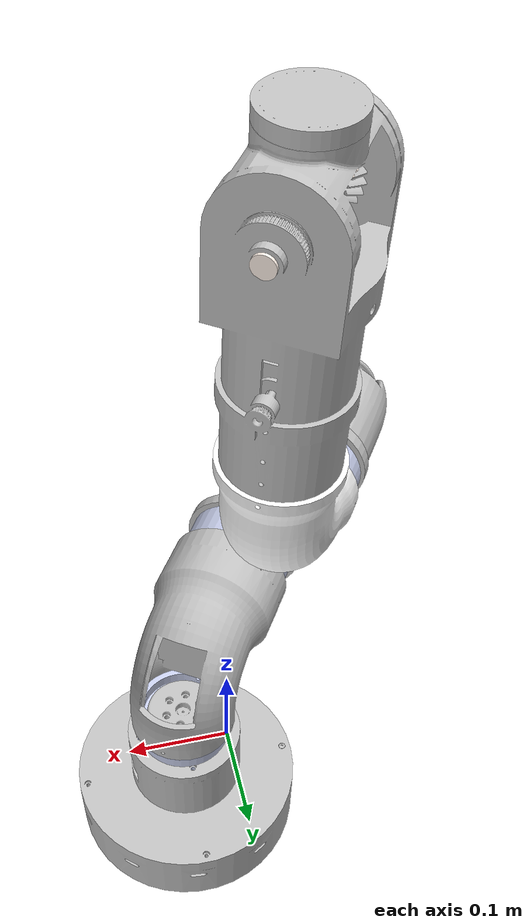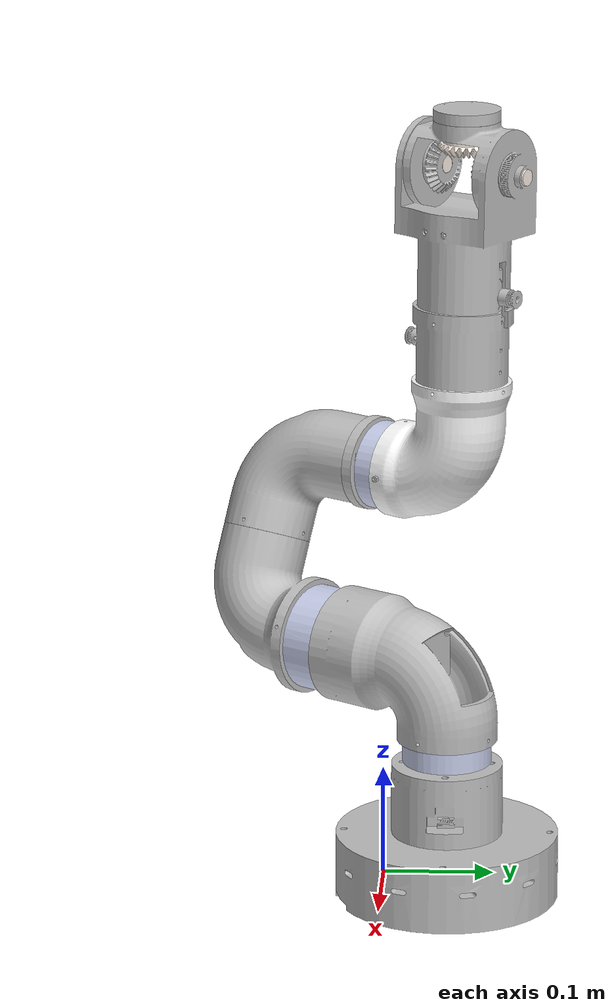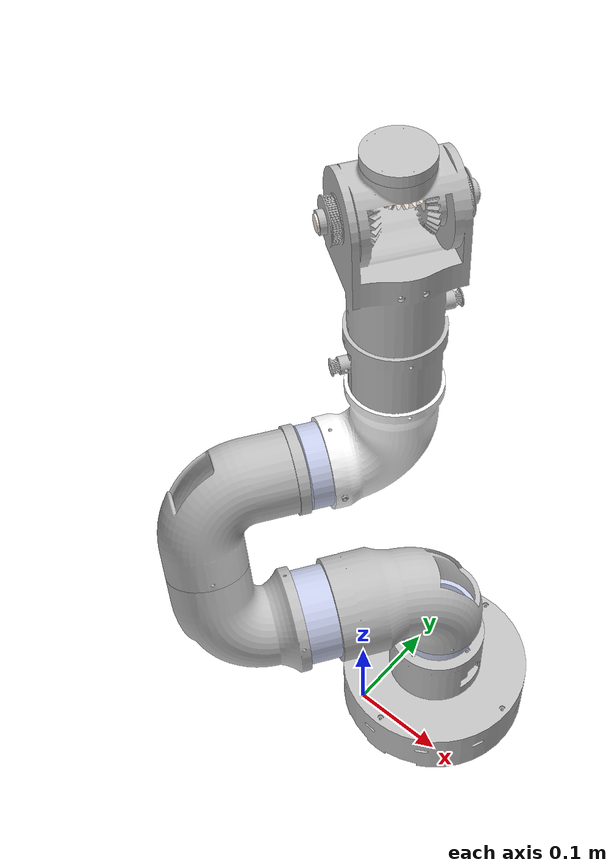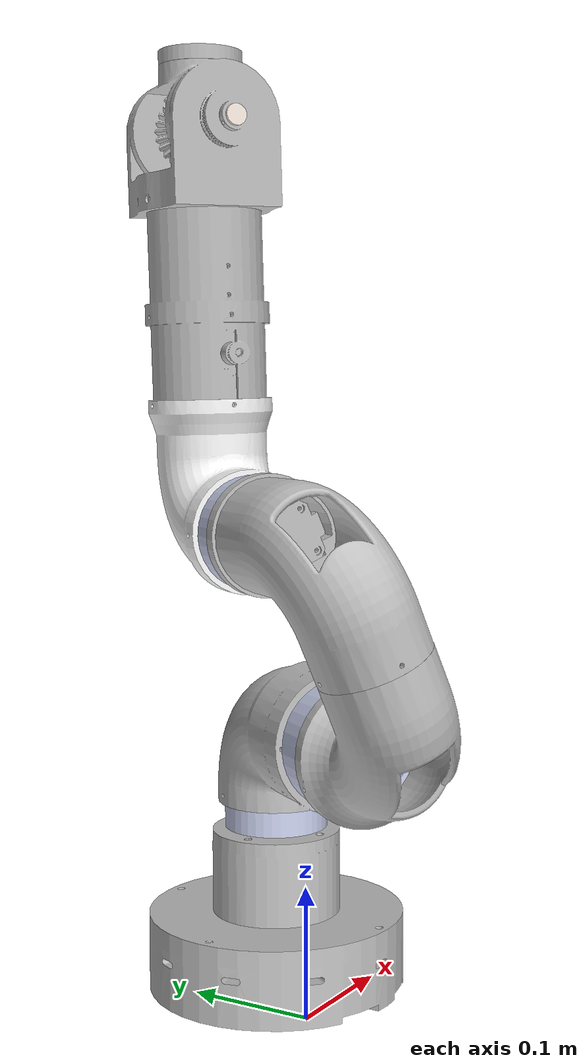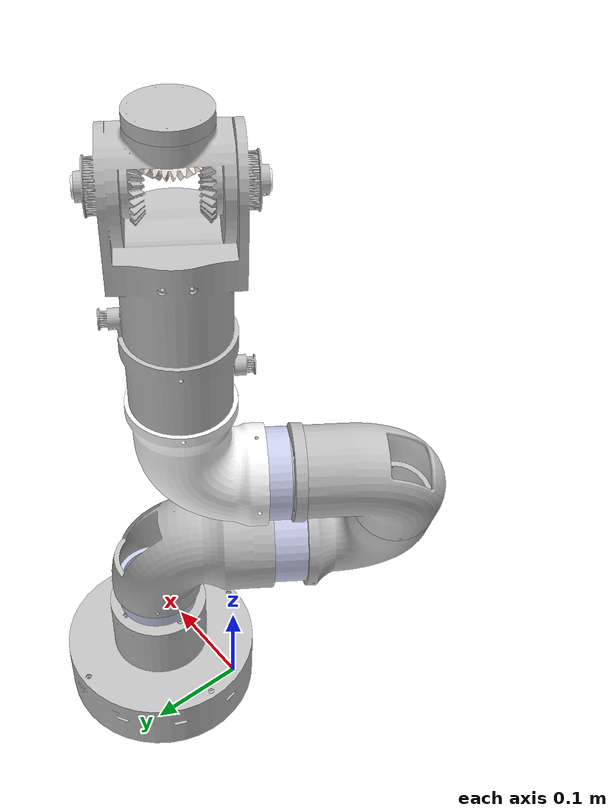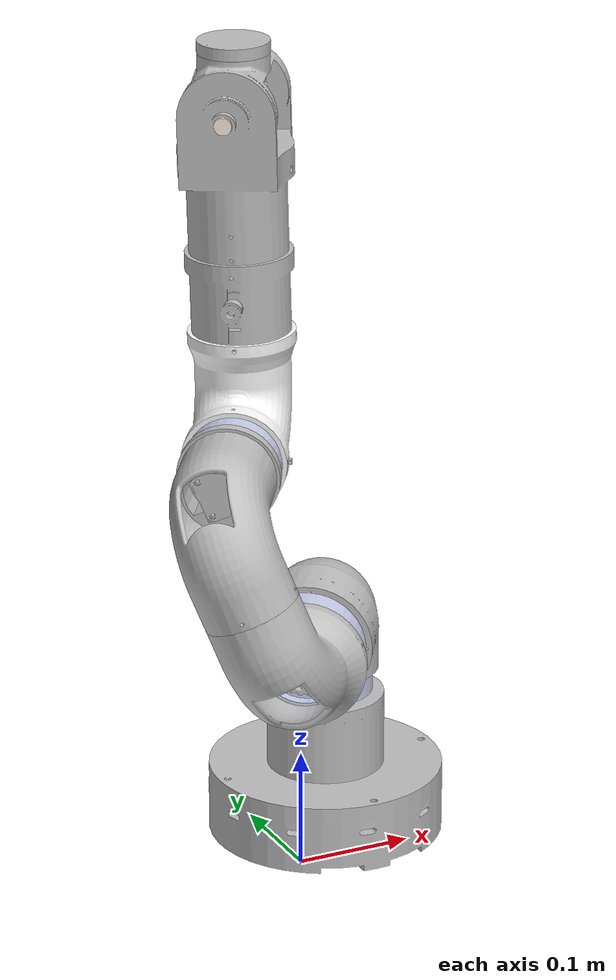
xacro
<?xml version="1.0"?>
<robot xmlns:xacro="http://www.ros.org/wiki/xacro"
       name="full-arm-smaller">

  <xacro:include filename="$(find waybionic_description)/urdf/full_arm_smaller.urdf"/>

  <!-- One identical block per joint; xacro keeps the five in step.
       lo/hi rather than min/max: those shadow xacro built-ins and emit
       "redefining global symbol" warnings on every expansion. -->
  <xacro:macro name="waybionic_joint" params="name lo:=-1.5708 hi:=1.5708">
    <joint name="${name}">
      <command_interface name="position">
        <param name="min">${lo}</param>
        <param name="max">${hi}</param>
      </command_interface>
      <state_interface name="position">
        <param name="initial_value">0.0</param>
      </state_interface>
      <state_interface name="velocity"/>
    </joint>
  </xacro:macro>

  <ros2_control name="WaybionicMockSystem" type="system">
    <hardware>
      <plugin>mock_components/GenericSystem</plugin>
      <param name="calculate_dynamics">true</param>
    </hardware>

    <xacro:waybionic_joint name="joint1"/>
    <xacro:waybionic_joint name="joint2"/>
    <xacro:waybionic_joint name="joint3"/>
    <xacro:waybionic_joint name="joint4"/>
    <xacro:waybionic_joint name="joint5"/>
  </ros2_control>

</robot>

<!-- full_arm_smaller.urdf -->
<robot name="full-arm-smaller">

  <!-- Dummy root so KDL does not discard base_link's inertia. -->
  <link name="world"/>
  <joint name="world_to_base" type="fixed">
    <parent link="world"/>
    <child link="base_link"/>
    <!-- The STL vertices keep their original SolidWorks assembly coordinates.
         This centres the assembly on the world origin in XY and drops its
         lowest point onto the z=0 ground plane. -->
    <origin xyz="0 0 0" rpy="0 0 0"/>
  </joint>
  <link name="base_link">
    <inertial>
      <origin xyz="0.052227 0.0604364 0.0293091" rpy="1.5708 0 0"/>
      <mass value="1.2997"/>
      <inertia ixx="0.0036992" ixy="-4.7879E-13" ixz="3.5114E-10" iyy="0.007244" iyz="-1.5577E-05" izz="0.0037785"/>
    </inertial>
    <visual>
      <origin xyz="-0.664103 1.42744 -0.903496" rpy="1.5708 0 0"/>
      <geometry>
        <mesh filename="package://waybionic_description/meshes/bottom_base_assembly.STL"/>
      </geometry>
      <material name="">
        <color rgba="0.75294 0.75294 0.75294 1"/>
      </material>
    </visual>
    <collision name="base_link_collision">
      <origin xyz="0.0522358 0.0594201 0.029995" rpy="1.5708 0 0"/>
      <geometry>
        <box size="0.1998 0.0600 0.2000"/>
      </geometry>
    </collision>
  </link>
  <link name="sweep">
    <inertial>
      <origin xyz="0.0163929 0.0756448 -0.160886" rpy="0 0 0"/>
      <mass value="0.26997"/>
      <inertia ixx="6.5782E-05" ixy="1.1446E-05" ixz="-2.7313E-09" iyy="8.2674E-05" iyz="-2.7407E-09" izz="8.8451E-05"/>
    </inertial>
    <visual>
      <origin xyz="-0.653777 -0.859305 -1.32289" rpy="0 0 0"/>
      <geometry>
        <mesh filename="package://waybionic_description/meshes/sweep.STL"/>
      </geometry>
      <material name="">
        <color rgba="0.75294 0.75294 0.75294 1"/>
      </material>
    </visual>
    <collision name="sweep_collision">
      <origin xyz="0.0148926 0.0721225 -0.169349" rpy="0 0 0"/>
      <geometry>
        <box size="0.0738 0.1785 0.2713"/>
      </geometry>
    </collision>
  </link>
  <!-- joint1: base yaw. Driven by the sweep gearbox; axis derived from the world
       vertical because the export defines no Axis_Sweep. -->
  <joint name="joint1" type="revolute">
    <origin xyz="0.0538204 0.0844065 0.0936804" rpy="-3.14159 0 -1.0472"/>
    <parent link="base_link"/>
    <child link="sweep"/>
    <axis xyz="0 -7.34641e-06 -1"/>
    <limit lower="-1.5708" upper="1.5708" effort="10" velocity="1.0"/>
  </joint>

  <link name="shoulder">
    <inertial>
      <origin xyz="-0.00833119 0.0644138 0.0215281" rpy="0 0 0"/>
      <mass value="0.19918"/>
      <inertia ixx="0.00044506" ixy="0.00011586" ixz="-4.3871E-08" iyy="0.00034473" iyz="-4.7682E-08" izz="0.00051429"/>
    </inertial>
    <visual>
      <origin xyz="-0.824841 -0.818826 -1.32207" rpy="0 0 0"/>
      <geometry>
        <mesh filename="package://waybionic_description/meshes/shouldersplit.STL"/>
      </geometry>
      <material name="">
        <color rgba="0.75294 0.75294 0.75294 1"/>
      </material>
    </visual>
    <collision name="shoulder_collision">
      <origin xyz="-0.00976251 0.072516 0.0215282" rpy="0 0 0"/>
      <geometry>
        <box size="0.1224 0.1325 0.0800"/>
      </geometry>
    </collision>
  </link>
  <!-- joint2: shoulder. Axis is the nema23 motor axis - the CSV lists that motor's
       components as nema23_w_shoulder / j2_nema23_gearbox. -->
  <joint name="joint2" type="revolute">
    <origin xyz="0.00732929 0.162696 -0.255115" rpy="-3.14158 1.1744 2.6739"/>
    <parent link="sweep"/>
    <child link="shoulder"/>
    <axis xyz="0.92246 0 0.386093"/>
    <limit lower="-1.5708" upper="1.5708" effort="10" velocity="1.0"/>
  </joint>

  <link name="elbow">
    <inertial>
      <origin xyz="0.0652637 0.0704856 -0.00263955" rpy="0 0 0"/>
      <mass value="0.17976"/>
      <inertia ixx="0.00030235" ixy="-7.4527E-05" ixz="-9.963E-10" iyy="0.00037544" iyz="-5.4808E-10" izz="0.00040872"/>
    </inertial>
    <visual>
      <origin xyz="-0.00249731 0.0319966 -0.0026393" rpy="0 0 0"/>
      <geometry>
        <mesh filename="package://waybionic_description/meshes/third_joint_bend.STL"/>
      </geometry>
      <material name="">
        <color rgba="1 1 1 1"/>
      </material>
    </visual>
    <collision name="elbow_collision">
      <origin xyz="0.0641974 0.0727466 -0.0026393" rpy="0 0 0"/>
      <geometry>
        <box size="0.1365 0.1135 0.0900"/>
      </geometry>
    </collision>
  </link>
  <!-- joint3: elbow bend. Axis from the CAD Axis_3rd joint bend frame. -->
  <joint name="joint3" type="revolute">
    <origin xyz="-0.0248502 -0.0097306 0.00472633" rpy="3.14159 -0.3685 0"/>
    <parent link="shoulder"/>
    <child link="elbow"/>
    <axis xyz="1 0 0"/>
    <limit lower="-1.5708" upper="1.5708" effort="10" velocity="1.0"/>
  </joint>

  <link name="forearm">
    <inertial>
      <origin xyz="0.000881305 0.114186 -0.0412555" rpy="0 0 0"/>
      <mass value="0.86499"/>
      <inertia ixx="0.00088427" ixy="3.205E-05" ixz="-3.2838E-07" iyy="0.00094021" iyz="-2.3104E-07" izz="0.0010963"/>
    </inertial>
    <visual>
      <origin xyz="-0.684809 -0.00415398 -1.36196" rpy="0 0 0"/>
      <geometry>
        <mesh filename="package://waybionic_description/meshes/diff_assembly_pulley.STL"/>
      </geometry>
      <material name="">
        <color rgba="0.75294 0.75294 0.75294 1"/>
      </material>
    </visual>
    <collision name="forearm_collision">
      <origin xyz="0.000885343 0.117867 -0.0412673" rpy="0 0 0"/>
      <geometry>
        <box size="0.1274 0.2477 0.0953"/>
      </geometry>
    </collision>
  </link>
  <!-- joint4: differential/forearm roll. Axis from Axis_diff-assembly-pulley. -->
  <joint name="joint4" type="revolute">
    <origin xyz="0.126943 0.0836319 -0.0439034" rpy="-3.14159 -3.3663e-05 1.5708"/>
    <parent link="elbow"/>
    <child link="forearm"/>
    <axis xyz="0 1 0"/>
    <limit lower="-1.5708" upper="1.5708" effort="10" velocity="1.0"/>
  </joint>

  <link name="tool">
    <inertial>
      <origin xyz="-0.0261854 -0.00183018 0.0147985" rpy="0 0 0"/>
      <mass value="0.053298"/>
      <inertia ixx="1.3634E-05" ixy="-8.735E-22" ixz="-1.8806E-08" iyy="1.8285E-05" iyz="1.1597E-07" izz="1.3317E-05"/>
    </inertial>
    <visual>
      <origin xyz="-0.0256756 -0.0265892 0.0148688" rpy="0 0 0"/>
      <geometry>
        <mesh filename="package://waybionic_description/meshes/biomed_lock_mech.STL"/>
      </geometry>
      <material name="">
        <color rgba="0.75294 0.75294 0.75294 1"/>
      </material>
    </visual>
    <collision name="tool_collision">
      <origin xyz="-0.0261702 -0.00899661 0.014685" rpy="0 0 0"/>
      <geometry>
        <box size="0.0599 0.0381 0.0599"/>
      </geometry>
    </collision>
  </link>
  <!-- joint5: tool lock. Axis from Axis_biomed lock mech. -->
  <joint name="joint5" type="revolute">
    <origin xyz="0.0251063 0.240781 -0.0220181" rpy="0.0529983 -1.16738 -0.0487647"/>
    <parent link="forearm"/>
    <child link="tool"/>
    <axis xyz="0.0191131 -0.999784 0.00814643"/>
    <limit lower="-1.5708" upper="1.5708" effort="10" velocity="1.0"/>
  </joint>

  <link name="stepper">
    <inertial>
      <origin xyz="0.64313 0.8998 1.2835" rpy="0 0 0"/>
      <mass value="0.45705"/>
      <inertia ixx="0.00037382" ixy="1.0743E-07" ixz="9.7233E-06" iyy="0.0005475" iyz="2.5993E-07" izz="0.00038353"/>
    </inertial>
    <visual>
      <origin xyz="0 0 0" rpy="0 0 0"/>
      <geometry>
        <mesh filename="package://waybionic_description/meshes/stepper.STL"/>
      </geometry>
      <material name="">
        <color rgba="0.75294 0.75294 0.75294 1"/>
      </material>
    </visual>
  </link>
  <joint name="stepper_mount" type="fixed">
    <origin xyz="-0.0631287 1.48217 0.83867" rpy="-1.57079 -3.67317e-06 -2.618"/>
    <parent link="sweep"/>
    <child link="stepper"/>
  </joint>

  <link name="nema23">
    <inertial>
      <origin xyz="0.10166 0.070102 0.0018368" rpy="0 0 0"/>
      <mass value="1.0827"/>
      <inertia ixx="0.0014882" ixy="-0.00023608" ixz="-5.2655E-05" iyy="0.0014342" iyz="-4.7983E-05" izz="0.0015666"/>
    </inertial>
    <visual>
      <origin xyz="0 0 0" rpy="0 0 0"/>
      <geometry>
        <mesh filename="package://waybionic_description/meshes/nema23.STL"/>
      </geometry>
      <material name="">
        <color rgba="0.75294 0.75294 0.75294 1"/>
      </material>
    </visual>
  </link>
  <joint name="nema23_mount" type="fixed">
    <origin xyz="0.0208635 0.0138745 -0.0531229" rpy="-1.5708 6.55747e-06 1.1031"/>
    <parent link="sweep"/>
    <child link="nema23"/>
  </joint>

  <link name="outerring">
    <inertial>
      <origin xyz="-0.0080961 0.027364 -0.026357" rpy="0 0 0"/>
      <mass value="0.29137"/>
      <inertia ixx="0.00023769" ixy="1.4814E-05" ixz="1.3088E-12" iyy="0.00026688" iyz="-1.3596E-12" izz="0.00036814"/>
    </inertial>
    <visual>
      <origin xyz="0 0 0" rpy="0 0 0"/>
      <geometry>
        <mesh filename="package://waybionic_description/meshes/outerring.STL"/>
      </geometry>
      <material name="">
        <color rgba="0.79216 0.81961 0.93333 1"/>
      </material>
    </visual>
  </link>
  <joint name="outerring_mount" type="fixed">
    <origin xyz="0.0727054 0.116482 -0.121794" rpy="-1.5708 0.396367 -0.467733"/>
    <parent link="sweep"/>
    <child link="outerring"/>
  </joint>

  <link name="heat_set_insert">
    <inertial>
      <origin xyz="0.02981 -0.0047361 0.051895" rpy="0 0 0"/>
      <mass value="0.00011545"/>
      <inertia ixx="3.5199E-10" ixy="6.9974E-13" ixz="-5.5737E-14" iyy="3.5037E-10" iyz="-2.0825E-14" izz="3.5866E-10"/>
    </inertial>
    <visual>
      <origin xyz="0 0 0" rpy="0 0 0"/>
      <geometry>
        <mesh filename="package://waybionic_description/meshes/heat_set_insert.STL"/>
      </geometry>
      <material name="">
        <color rgba="0.79216 0.81961 0.93333 1"/>
      </material>
    </visual>
  </link>
  <joint name="heat_set_insert_mount" type="fixed">
    <origin xyz="0.0555045 0.0338746 -0.024123" rpy="-3.14159 8.0726e-07 3.03149"/>
    <parent link="sweep"/>
    <child link="heat_set_insert"/>
  </joint>

  <link name="m3">
    <inertial>
      <origin xyz="-0.060837 -0.13261 -0.0085639" rpy="0 0 0"/>
      <mass value="0.00029834"/>
      <inertia ixx="1.068E-08" ixy="-2.7807E-09" ixz="-8.3275E-11" iyy="4.0957E-09" iyz="-2.2672E-10" izz="9.2816E-09"/>
    </inertial>
    <visual>
      <origin xyz="0 0 0" rpy="0 0 0"/>
      <geometry>
        <mesh filename="package://waybionic_description/meshes/m3.STL"/>
      </geometry>
      <material name="">
        <color rgba="0.75294 0.75294 0.75294 1"/>
      </material>
    </visual>
  </link>
  <joint name="m3_mount" type="fixed">
    <origin xyz="0.0174887 0.0609183 -0.275093" rpy="-1.60049 0.350493 -2.0487"/>
    <parent link="sweep"/>
    <child link="m3"/>
  </joint>

  <link name="bevel_gear">
    <inertial>
      <origin xyz="-0.023575 -0.00015203 0.00068011" rpy="0 0 0"/>
      <mass value="0.042026"/>
      <inertia ixx="9.9802E-06" ixy="-4.8977E-09" ixz="4.0392E-09" iyy="5.3605E-06" iyz="-8.7432E-07" izz="6.9939E-06"/>
    </inertial>
    <visual>
      <origin xyz="0 0 0" rpy="0 0 0"/>
      <geometry>
        <mesh filename="package://waybionic_description/meshes/bevel_gear.STL"/>
      </geometry>
      <material name="">
        <color rgba="1 0.94902 0.9098 1"/>
      </material>
    </visual>
  </link>
  <joint name="bevel_gear_mount" type="fixed">
    <origin xyz="-0.0255987 -0.0506903 0.0148612" rpy="1.57081 1.3833e-05 -1.57079"/>
    <parent link="tool"/>
    <child link="bevel_gear"/>
  </joint>

</robot>
